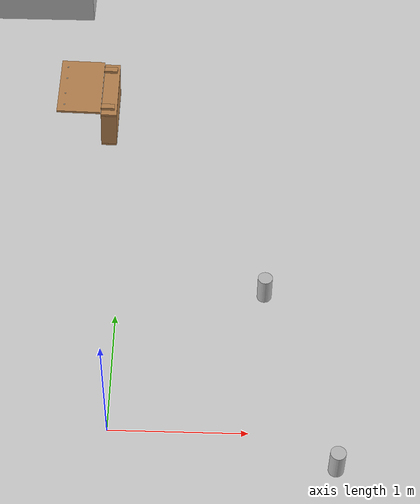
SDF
<sdf version="1.6">
 <world name="default">
  <physics name="default_physics" default="0" type="ode">
   <max_step_size>0.001</max_step_size>
   <real_time_factor>1</real_time_factor>
   <real_time_update_rate>1000</real_time_update_rate>
  </physics>
  <model name="ground_plane">
   <static>1</static>
   <link name="link">
    <collision name="collision">
     <geometry><plane><normal>0 0 1</normal><size>100 100</size></plane></geometry>
     <surface><friction><ode><mu>100</mu><mu2>50</mu2></ode></friction></surface>
    </collision>
    <visual name="visual">
     <cast_shadows>0</cast_shadows>
     <geometry><plane><normal>0 0 1</normal><size>100 100</size></plane></geometry>
     <material>
      <script><uri>file://media/materials/scripts/gazebo.material</uri><name>Gazebo/Grey</name></script>
     </material>
    </visual>
   </link>
  </model>
  <light name="sun" type="directional">
   <pose>0 0 10 0 -0 0</pose>
   <diffuse>0.8 0.8 0.8 1</diffuse>
   <specular>0.1 0.1 0.1 1</specular>
   <attenuation>
    <range>1000</range>
    <constant>0.9</constant>
    <linear>0.01</linear>
    <quadratic>0.001</quadratic>
   </attenuation>
   <direction>-0.5 0.5 -1</direction>
  </light>
  <model name="my_mesh">
   <pose>-3 0 0 0 -0 3.14</pose>
   <static>1</static>
   <link name="body">
    <visual name="visual">
     <geometry><mesh><uri>model://reflesh_space_no_wall.dae</uri><scale>1 1 1</scale></mesh></geometry>
    </visual>
    <collision name="collision">
     <geometry><mesh><uri>model://reflesh_space_no_wall.dae</uri><scale>1 1 1</scale></mesh></geometry>
    </collision>
   </link>
  </model>
  <gravity>0 0 -9.8</gravity>
  <magnetic_field>6e-06 2.3e-05 -4.2e-05</magnetic_field>
  <atmosphere type="adiabatic"/>
  <scene><ambient>0.4 0.4 0.4 1</ambient><background>0.7 0.7 0.7 1</background><shadows>1</shadows></scene>
  <spherical_coordinates>
   <surface_model>EARTH_WGS84</surface_model>
   <latitude_deg>0</latitude_deg>
   <longitude_deg>0</longitude_deg>
   <elevation>0</elevation>
   <heading_deg>0</heading_deg>
  </spherical_coordinates>
  <model name="beer">
   <link name="link">
    <pose>0 0 0.115 0 -0 0</pose>
    <inertial>
     <mass>0.39</mass>
     <inertia><ixx>0.00058</ixx><ixy>0</ixy><ixz>0</ixz><iyy>0.00058</iyy><iyz>0</iyz><izz>0.00019</izz></inertia>
    </inertial>
    <collision name="collision">
     <geometry><cylinder><radius>0.055</radius><length>0.23</length></cylinder></geometry>
    </collision>
    <visual name="visual">
     <geometry><cylinder><radius>0.055</radius><length>0.23</length></cylinder></geometry>
     <material>
      <script>
       <uri>model://beer/materials/scripts</uri>
       <uri>model://beer/materials/textures</uri>
       <name>Beer/Diffuse</name>
      </script>
     </material>
    </visual>
   </link>
   <pose>1.60568 -0.274706 -7e-06 -1e-06 0 -1.1e-05</pose>
  </model>
  <model name="wooden_case">
   <link name="base">
    <pose>0 0 0.024 0 -0 0</pose>
    <inertial>
     <pose>-0.022184 0 0.171592 0 -0 0</pose>
     <mass>3.96264</mass>
     <inertia>
      <ixx>0.213536</ixx>
      <ixy>0</ixy>
      <ixz>0.000779377</ixz>
      <iyy>0.0708943</iyy>
      <iyz>0</iyz>
      <izz>0.154604</izz>
     </inertia>
    </inertial>
    <collision name="collision_back">
     <pose>-0.053975 0 0.1778 0 -0 0</pose>
     <geometry><box><size>0.01905 0.5461 0.3175</size></box></geometry>
     <surface>
      <contact>
       <poissons_ratio>0.347</poissons_ratio>
       <elastic_modulus>8.8e+09</elastic_modulus>
       <ode><kp>100000</kp><kd>100</kd><max_vel>100</max_vel><min_depth>0.001</min_depth></ode>
      </contact>
      <friction>
       <torsional>
        <coefficient>1</coefficient>
        <use_patch_radius>0</use_patch_radius>
        <surface_radius>0.01</surface_radius>
       </torsional>
      </friction>
     </surface>
    </collision>
    <visual name="visual_back">
     <pose>-0.053975 0 0.1778 0 -0 0</pose>
     <geometry><box><size>0.01905 0.5461 0.3175</size></box></geometry>
     <material>
      <script><uri>file://media/materials/scripts/gazebo.material</uri><name>Gazebo/Wood</name></script>
     </material>
    </visual>
    <collision name="collision_bottom">
     <pose>0 0 0.009525 0 -0 0</pose>
     <geometry><box><size>0.127 0.5842 0.01905</size></box></geometry>
     <surface>
      <contact>
       <poissons_ratio>0.347</poissons_ratio>
       <elastic_modulus>8.8e+09</elastic_modulus>
       <ode><kp>100000</kp><kd>100</kd><max_vel>100</max_vel><min_depth>0.001</min_depth></ode>
      </contact>
      <friction>
       <torsional>
        <coefficient>1</coefficient>
        <use_patch_radius>0</use_patch_radius>
        <surface_radius>0.01</surface_radius>
       </torsional>
      </friction>
     </surface>
    </collision>
    <visual name="visual_bottom">
     <pose>0 0 0.009525 0 -0 0</pose>
     <geometry><box><size>0.127 0.5842 0.01905</size></box></geometry>
     <material>
      <script><uri>file://media/materials/scripts/gazebo.material</uri><name>Gazebo/Wood</name></script>
     </material>
    </visual>
    <collision name="collision_top">
     <pose>0 0 0.346075 0 -0 0</pose>
     <geometry><box><size>0.127 0.5842 0.01905</size></box></geometry>
     <surface>
      <contact>
       <poissons_ratio>0.347</poissons_ratio>
       <elastic_modulus>8.8e+09</elastic_modulus>
       <ode><kp>100000</kp><kd>100</kd><max_vel>100</max_vel><min_depth>0.001</min_depth></ode>
      </contact>
      <friction>
       <torsional>
        <coefficient>1</coefficient>
        <use_patch_radius>0</use_patch_radius>
        <surface_radius>0.01</surface_radius>
       </torsional>
      </friction>
     </surface>
    </collision>
    <visual name="visual_top">
     <pose>0 0 0.346075 0 -0 0</pose>
     <geometry><box><size>0.127 0.5842 0.01905</size></box></geometry>
     <material>
      <script><uri>file://media/materials/scripts/gazebo.material</uri><name>Gazebo/Wood</name></script>
     </material>
    </visual>
    <collision name="collision_left">
     <pose>0 -0.282575 0.1778 0 -0 0</pose>
     <geometry><box><size>0.127 0.01905 0.3175</size></box></geometry>
     <surface>
      <contact>
       <poissons_ratio>0.347</poissons_ratio>
       <elastic_modulus>8.8e+09</elastic_modulus>
       <ode><kp>100000</kp><kd>100</kd><max_vel>100</max_vel><min_depth>0.001</min_depth></ode>
      </contact>
      <friction>
       <torsional>
        <coefficient>1</coefficient>
        <use_patch_radius>0</use_patch_radius>
        <surface_radius>0.01</surface_radius>
       </torsional>
      </friction>
     </surface>
    </collision>
    <visual name="visual_left">
     <pose>0 -0.282575 0.1778 0 -0 0</pose>
     <geometry><box><size>0.127 0.01905 0.3175</size></box></geometry>
     <material>
      <script><uri>file://media/materials/scripts/gazebo.material</uri><name>Gazebo/Wood</name></script>
     </material>
    </visual>
    <collision name="collision_right">
     <pose>0 0.282575 0.1778 0 -0 0</pose>
     <geometry><box><size>0.127 0.01905 0.3175</size></box></geometry>
     <surface>
      <contact>
       <poissons_ratio>0.347</poissons_ratio>
       <elastic_modulus>8.8e+09</elastic_modulus>
       <ode><kp>100000</kp><kd>100</kd><max_vel>100</max_vel><min_depth>0.001</min_depth></ode>
      </contact>
      <friction>
       <torsional>
        <coefficient>1</coefficient>
        <use_patch_radius>0</use_patch_radius>
        <surface_radius>0.01</surface_radius>
       </torsional>
      </friction>
     </surface>
    </collision>
    <visual name="visual_right">
     <pose>0 0.282575 0.1778 0 -0 0</pose>
     <geometry><box><size>0.127 0.01905 0.3175</size></box></geometry>
     <material>
      <script><uri>file://media/materials/scripts/gazebo.material</uri><name>Gazebo/Wood</name></script>
     </material>
    </visual>
    <collision name="collision_block_left">
     <pose>0.0095 -0.2151 -0.012 0 -0 0</pose>
     <geometry><box><size>0.108 0.05 0.024</size></box></geometry>
     <surface>
      <contact>
       <poissons_ratio>0.347</poissons_ratio>
       <elastic_modulus>8.8e+09</elastic_modulus>
       <ode><kp>100000</kp><kd>100</kd><max_vel>100</max_vel><min_depth>0.001</min_depth></ode>
      </contact>
      <friction>
       <torsional>
        <coefficient>1</coefficient>
        <use_patch_radius>0</use_patch_radius>
        <surface_radius>0.01</surface_radius>
       </torsional>
      </friction>
     </surface>
    </collision>
    <visual name="visual_block_left">
     <pose>0.0095 -0.2151 -0.012 0 -0 0</pose>
     <geometry><box><size>0.108 0.05 0.024</size></box></geometry>
     <material>
      <script><uri>file://media/materials/scripts/gazebo.material</uri><name>Gazebo/Wood</name></script>
     </material>
    </visual>
    <collision name="collision_block_right">
     <pose>0.0095 0.2151 -0.012 0 -0 0</pose>
     <geometry><box><size>0.108 0.05 0.024</size></box></geometry>
     <surface>
      <contact>
       <poissons_ratio>0.347</poissons_ratio>
       <elastic_modulus>8.8e+09</elastic_modulus>
       <ode><kp>100000</kp><kd>100</kd><max_vel>100</max_vel><min_depth>0.001</min_depth></ode>
      </contact>
      <friction>
       <torsional>
        <coefficient>1</coefficient>
        <use_patch_radius>0</use_patch_radius>
        <surface_radius>0.01</surface_radius>
       </torsional>
      </friction>
     </surface>
    </collision>
    <visual name="visual_block_right">
     <pose>0.0095 0.2151 -0.012 0 -0 0</pose>
     <geometry><box><size>0.108 0.05 0.024</size></box></geometry>
     <material>
      <script><uri>file://media/materials/scripts/gazebo.material</uri><name>Gazebo/Wood</name></script>
     </material>
    </visual>
   </link>
   <link name="lid">
    <pose>0.243775 0 0.009525 0 -0 0</pose>
    <inertial>
     <mass>1.97874</mass>
     <inertia>
      <ixx>0.0563367</ixx>
      <ixy>0</ixy>
      <ixz>0</ixz>
      <iyy>0.020911</iyy>
      <iyz>0</iyz>
      <izz>0.0771281</izz>
     </inertia>
    </inertial>
    <collision name="collision">
     <geometry><box><size>0.3556 0.5842 0.01905</size></box></geometry>
     <surface>
      <contact>
       <poissons_ratio>0.347</poissons_ratio>
       <elastic_modulus>8.8e+09</elastic_modulus>
       <ode><kp>100000</kp><kd>100</kd><max_vel>100</max_vel><min_depth>0.001</min_depth></ode>
      </contact>
      <friction>
       <torsional>
        <coefficient>1</coefficient>
        <use_patch_radius>0</use_patch_radius>
        <surface_radius>0.01</surface_radius>
       </torsional>
      </friction>
     </surface>
    </collision>
    <visual name="visual">
     <geometry><box><size>0.3556 0.5842 0.01905</size></box></geometry>
     <material>
      <script><uri>file://media/materials/scripts/gazebo.material</uri><name>Gazebo/Wood</name></script>
     </material>
    </visual>
    <visual name="tee_nut_1">
     <pose>0.122 -0.216 0 0 -0 0</pose>
     <geometry><cylinder><radius>0.00635</radius><length>0.0192405</length></cylinder></geometry>
     <material>
      <script><uri>file://media/materials/scripts/gazebo.material</uri><name>Gazebo/Grey</name></script>
     </material>
    </visual>
    <visual name="tee_nut_2">
     <pose>0.122 -0.088 0 0 -0 0</pose>
     <geometry><cylinder><radius>0.00635</radius><length>0.0192405</length></cylinder></geometry>
     <material>
      <script><uri>file://media/materials/scripts/gazebo.material</uri><name>Gazebo/Grey</name></script>
     </material>
    </visual>
    <visual name="tee_nut_3">
     <pose>0.122 0.088 0 0 -0 0</pose>
     <geometry><cylinder><radius>0.00635</radius><length>0.0192405</length></cylinder></geometry>
     <material>
      <script><uri>file://media/materials/scripts/gazebo.material</uri><name>Gazebo/Grey</name></script>
     </material>
    </visual>
    <visual name="tee_nut_4">
     <pose>0.122 0.216 0 0 -0 0</pose>
     <geometry><cylinder><radius>0.00635</radius><length>0.0192405</length></cylinder></geometry>
     <material>
      <script><uri>file://media/materials/scripts/gazebo.material</uri><name>Gazebo/Grey</name></script>
     </material>
    </visual>
   </link>
   <joint name="lid_hinge" type="revolute">
    <pose>-0.1778 0 0.01905 0 -0 0</pose>
    <parent>base</parent>
    <child>lid</child>
    <axis>
     <xyz>0 1 0</xyz>
     <limit><upper>0.523599</upper><lower>-1.5708</lower></limit>
     <use_parent_model_frame>0</use_parent_model_frame>
     <dynamics><spring_reference>0</spring_reference><spring_stiffness>0</spring_stiffness></dynamics>
    </axis>
   </joint>
   <pose>-0.149349 3.05303 0.38034 3.14159 -0.032857 3.14159</pose>
  </model>
  <model name="beer_0">
   <link name="link">
    <pose>0 0 0.115 0 -0 0</pose>
    <inertial>
     <mass>0.39</mass>
     <inertia><ixx>0.00058</ixx><ixy>0</ixy><ixz>0</ixz><iyy>0.00058</iyy><iyz>0</iyz><izz>0.00019</izz></inertia>
    </inertial>
    <collision name="collision">
     <geometry><cylinder><radius>0.055</radius><length>0.23</length></cylinder></geometry>
    </collision>
    <visual name="visual">
     <geometry><cylinder><radius>0.055</radius><length>0.23</length></cylinder></geometry>
     <material>
      <script>
       <uri>model://beer/materials/scripts</uri>
       <uri>model://beer/materials/textures</uri>
       <name>Beer/Diffuse</name>
      </script>
     </material>
    </visual>
   </link>
   <pose>1.11698 1.21761 -2e-06 1e-06 -0 -5e-06</pose>
  </model>
 </world>
</sdf>
